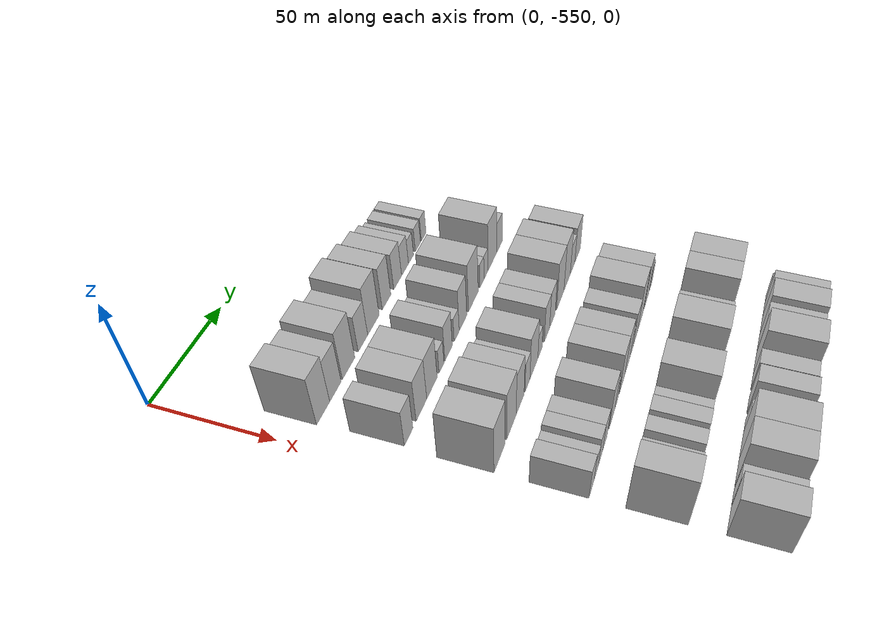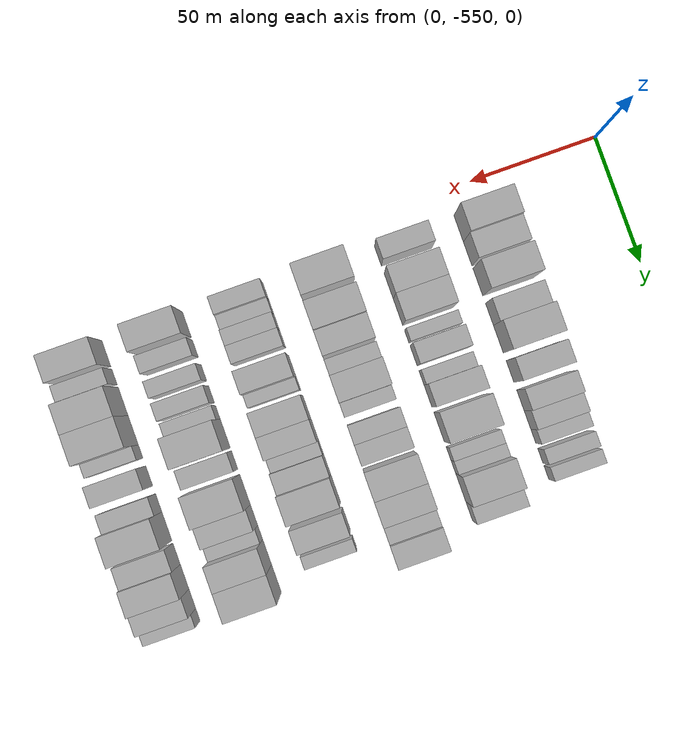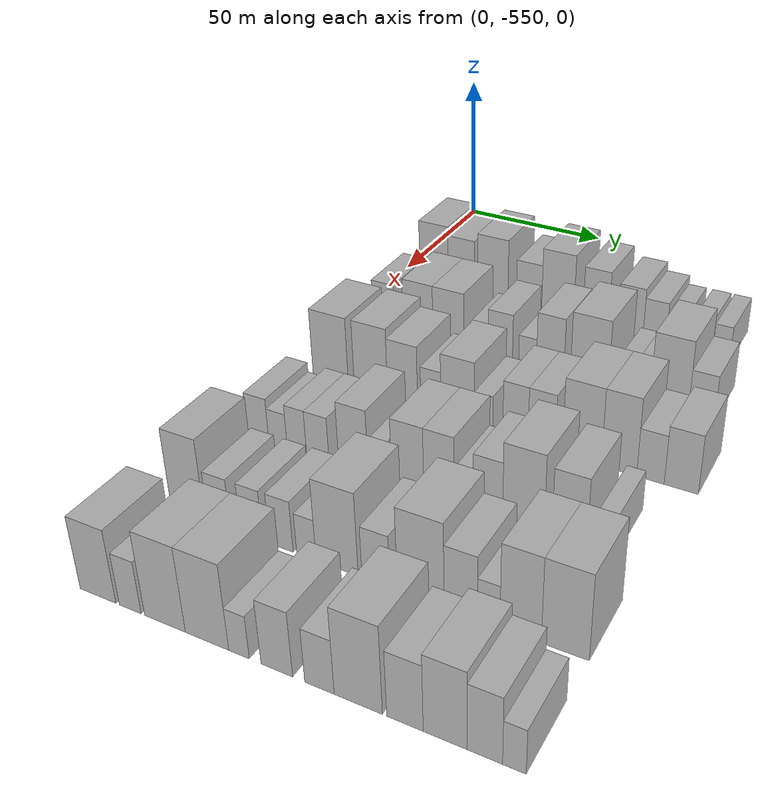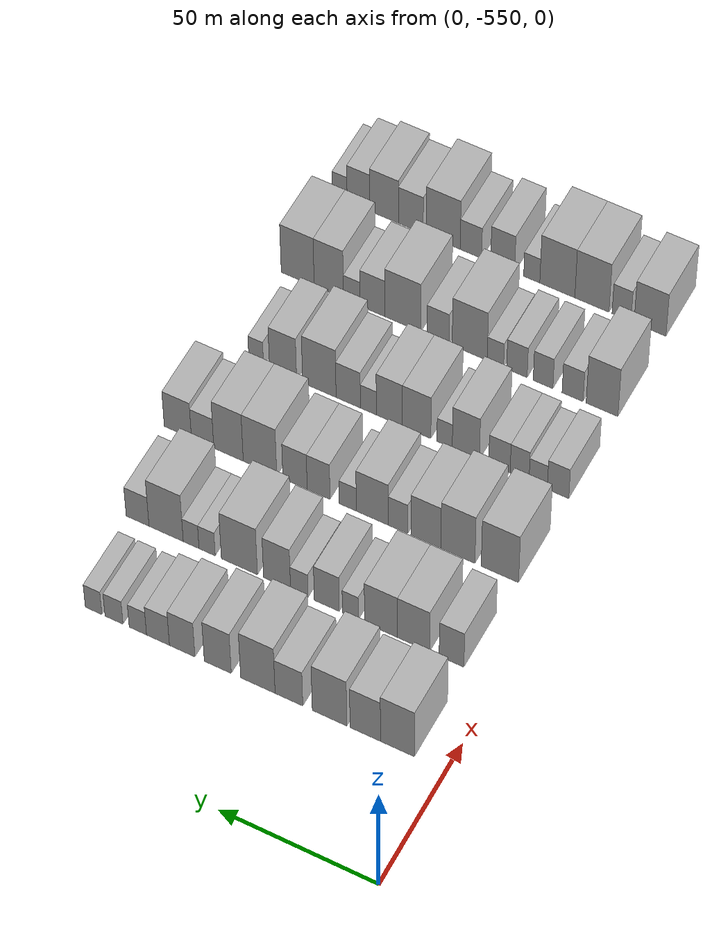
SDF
<sdf version="1.6">
 <world name="default">
  <model name="building_1">
   <static>1</static>
   <pose>50.0000 -534.6889 0 0.000000 0.000000 0.000000</pose>
   <link name="link">
    <pose>0 0 12.00 0 0 0</pose>
    <collision name="collision"><geometry><box><size>20.0000 10.6221 24.0000</size></box></geometry></collision>
    <visual name="visual">
     <cast_shadows>0</cast_shadows>
     <geometry><box><size>20.0000 10.6221 24.0000</size></box></geometry>
     <material>
      <script>
       <uri>model://HANNAS_wall/materials/scripts</uri>
       <uri>model://HANNAS_wall/materials/textures</uri>
       <name>vrc/HANNAS_wall</name>
      </script>
     </material>
    </visual>
   </link>
  </model>
  <model name="building_2">
   <static>1</static>
   <pose>50.0000 -524.6034 0 0.000000 0.000000 0.000000</pose>
   <link name="link">
    <pose>0 0 10.50 0 0 0</pose>
    <collision name="collision"><geometry><box><size>20.0000 9.5490 21.0000</size></box></geometry></collision>
    <visual name="visual">
     <cast_shadows>0</cast_shadows>
     <geometry><box><size>20.0000 9.5490 21.0000</size></box></geometry>
     <material>
      <script>
       <uri>model://HANNAS_wall/materials/scripts</uri>
       <uri>model://HANNAS_wall/materials/textures</uri>
       <name>vrc/HANNAS_wall</name>
      </script>
     </material>
    </visual>
   </link>
  </model>
  <model name="building_3">
   <static>1</static>
   <pose>50.0000 -513.3731 0 0.000000 0.000000 0.000000</pose>
   <link name="link">
    <pose>0 0 12.00 0 0 0</pose>
    <collision name="collision"><geometry><box><size>20.0000 10.9115 24.0000</size></box></geometry></collision>
    <visual name="visual">
     <cast_shadows>0</cast_shadows>
     <geometry><box><size>20.0000 10.9115 24.0000</size></box></geometry>
     <material>
      <script>
       <uri>model://HANNAS_wall/materials/scripts</uri>
       <uri>model://HANNAS_wall/materials/textures</uri>
       <name>vrc/HANNAS_wall</name>
      </script>
     </material>
    </visual>
   </link>
  </model>
  <model name="building_4">
   <static>1</static>
   <pose>50.0000 -500.5222 0 0.000000 0.000000 0.000000</pose>
   <link name="link">
    <pose>0 0 9.00 0 0 0</pose>
    <collision name="collision"><geometry><box><size>20.0000 8.7904 18.0000</size></box></geometry></collision>
    <visual name="visual">
     <cast_shadows>0</cast_shadows>
     <geometry><box><size>20.0000 8.7904 18.0000</size></box></geometry>
     <material>
      <script>
       <uri>model://HANNAS_wall/materials/scripts</uri>
       <uri>model://HANNAS_wall/materials/textures</uri>
       <name>vrc/HANNAS_wall</name>
      </script>
     </material>
    </visual>
   </link>
  </model>
  <model name="building_5">
   <static>1</static>
   <pose>50.0000 -490.6456 0 0.000000 0.000000 0.000000</pose>
   <link name="link">
    <pose>0 0 12.00 0 0 0</pose>
    <collision name="collision"><geometry><box><size>20.0000 10.9627 24.0000</size></box></geometry></collision>
    <visual name="visual">
     <cast_shadows>0</cast_shadows>
     <geometry><box><size>20.0000 10.9627 24.0000</size></box></geometry>
     <material>
      <script>
       <uri>model://HANNAS_wall/materials/scripts</uri>
       <uri>model://HANNAS_wall/materials/textures</uri>
       <name>vrc/HANNAS_wall</name>
      </script>
     </material>
    </visual>
   </link>
  </model>
  <model name="building_6">
   <static>1</static>
   <pose>50.0000 -477.8518 0 0.000000 0.000000 0.000000</pose>
   <link name="link">
    <pose>0 0 10.50 0 0 0</pose>
    <collision name="collision"><geometry><box><size>20.0000 8.6249 21.0000</size></box></geometry></collision>
    <visual name="visual">
     <cast_shadows>0</cast_shadows>
     <geometry><box><size>20.0000 8.6249 21.0000</size></box></geometry>
     <material>
      <script>
       <uri>model://HANNAS_wall/materials/scripts</uri>
       <uri>model://HANNAS_wall/materials/textures</uri>
       <name>vrc/HANNAS_wall</name>
      </script>
     </material>
    </visual>
   </link>
  </model>
  <model name="building_7">
   <static>1</static>
   <pose>50.0000 -466.4373 0 0.000000 0.000000 0.000000</pose>
   <link name="link">
    <pose>0 0 9.00 0 0 0</pose>
    <collision name="collision"><geometry><box><size>20.0000 8.2041 18.0000</size></box></geometry></collision>
    <visual name="visual">
     <cast_shadows>0</cast_shadows>
     <geometry><box><size>20.0000 8.2041 18.0000</size></box></geometry>
     <material>
      <script>
       <uri>model://HANNAS_wall/materials/scripts</uri>
       <uri>model://HANNAS_wall/materials/textures</uri>
       <name>vrc/HANNAS_wall</name>
      </script>
     </material>
    </visual>
   </link>
  </model>
  <model name="building_8">
   <static>1</static>
   <pose>50.0000 -458.6460 0 0.000000 0.000000 0.000000</pose>
   <link name="link">
    <pose>0 0 7.50 0 0 0</pose>
    <collision name="collision"><geometry><box><size>20.0000 7.3786 15.0000</size></box></geometry></collision>
    <visual name="visual">
     <cast_shadows>0</cast_shadows>
     <geometry><box><size>20.0000 7.3786 15.0000</size></box></geometry>
     <material>
      <script>
       <uri>model://HANNAS_wall/materials/scripts</uri>
       <uri>model://HANNAS_wall/materials/textures</uri>
       <name>vrc/HANNAS_wall</name>
      </script>
     </material>
    </visual>
   </link>
  </model>
  <model name="building_9">
   <static>1</static>
   <pose>50.0000 -452.1607 0 0.000000 0.000000 0.000000</pose>
   <link name="link">
    <pose>0 0 6.00 0 0 0</pose>
    <collision name="collision"><geometry><box><size>20.0000 5.5920 12.0000</size></box></geometry></collision>
    <visual name="visual">
     <cast_shadows>0</cast_shadows>
     <geometry><box><size>20.0000 5.5920 12.0000</size></box></geometry>
     <material>
      <script>
       <uri>model://HANNAS_wall/materials/scripts</uri>
       <uri>model://HANNAS_wall/materials/textures</uri>
       <name>vrc/HANNAS_wall</name>
      </script>
     </material>
    </visual>
   </link>
  </model>
  <model name="building_10">
   <static>1</static>
   <pose>50.0000 -444.4440 0 0.000000 0.000000 0.000000</pose>
   <link name="link">
    <pose>0 0 6.00 0 0 0</pose>
    <collision name="collision"><geometry><box><size>20.0000 5.8414 12.0000</size></box></geometry></collision>
    <visual name="visual">
     <cast_shadows>0</cast_shadows>
     <geometry><box><size>20.0000 5.8414 12.0000</size></box></geometry>
     <material>
      <script>
       <uri>model://HANNAS_wall/materials/scripts</uri>
       <uri>model://HANNAS_wall/materials/textures</uri>
       <name>vrc/HANNAS_wall</name>
      </script>
     </material>
    </visual>
   </link>
  </model>
  <model name="building_11">
   <static>1</static>
   <pose>50.0000 -437.8326 0 0.000000 0.000000 0.000000</pose>
   <link name="link">
    <pose>0 0 6.00 0 0 0</pose>
    <collision name="collision"><geometry><box><size>20.0000 5.3815 12.0000</size></box></geometry></collision>
    <visual name="visual">
     <cast_shadows>0</cast_shadows>
     <geometry><box><size>20.0000 5.3815 12.0000</size></box></geometry>
     <material>
      <script>
       <uri>model://HANNAS_wall/materials/scripts</uri>
       <uri>model://HANNAS_wall/materials/textures</uri>
       <name>vrc/HANNAS_wall</name>
      </script>
     </material>
    </visual>
   </link>
  </model>
  <model name="building_118">
   <static>1</static>
   <pose>82.0000 -535.0865 0 0.000000 0.000000 0.000000</pose>
   <link name="link">
    <pose>0 0 9.00 0 0 0</pose>
    <collision name="collision"><geometry><box><size>20.0000 7.8270 18.0000</size></box></geometry></collision>
    <visual name="visual">
     <cast_shadows>0</cast_shadows>
     <geometry><box><size>20.0000 7.8270 18.0000</size></box></geometry>
     <material>
      <script>
       <uri>model://HANNAS_wall/materials/scripts</uri>
       <uri>model://HANNAS_wall/materials/textures</uri>
       <name>vrc/HANNAS_wall</name>
      </script>
     </material>
    </visual>
   </link>
  </model>
  <model name="building_119">
   <static>1</static>
   <pose>82.0000 -523.0592 0 0.000000 0.000000 0.000000</pose>
   <link name="link">
    <pose>0 0 10.50 0 0 0</pose>
    <collision name="collision"><geometry><box><size>20.0000 10.2275 21.0000</size></box></geometry></collision>
    <visual name="visual">
     <cast_shadows>0</cast_shadows>
     <geometry><box><size>20.0000 10.2275 21.0000</size></box></geometry>
     <material>
      <script>
       <uri>model://HANNAS_wall/materials/scripts</uri>
       <uri>model://HANNAS_wall/materials/textures</uri>
       <name>vrc/HANNAS_wall</name>
      </script>
     </material>
    </visual>
   </link>
  </model>
  <model name="building_120">
   <static>1</static>
   <pose>82.0000 -512.7321 0 0.000000 0.000000 0.000000</pose>
   <link name="link">
    <pose>0 0 10.50 0 0 0</pose>
    <collision name="collision"><geometry><box><size>20.0000 10.4268 21.0000</size></box></geometry></collision>
    <visual name="visual">
     <cast_shadows>0</cast_shadows>
     <geometry><box><size>20.0000 10.4268 21.0000</size></box></geometry>
     <material>
      <script>
       <uri>model://HANNAS_wall/materials/scripts</uri>
       <uri>model://HANNAS_wall/materials/textures</uri>
       <name>vrc/HANNAS_wall</name>
      </script>
     </material>
    </visual>
   </link>
  </model>
  <model name="building_121">
   <static>1</static>
   <pose>82.0000 -502.9765 0 0.000000 0.000000 0.000000</pose>
   <link name="link">
    <pose>0 0 6.00 0 0 0</pose>
    <collision name="collision"><geometry><box><size>20.0000 5.0844 12.0000</size></box></geometry></collision>
    <visual name="visual">
     <cast_shadows>0</cast_shadows>
     <geometry><box><size>20.0000 5.0844 12.0000</size></box></geometry>
     <material>
      <script>
       <uri>model://HANNAS_wall/materials/scripts</uri>
       <uri>model://HANNAS_wall/materials/textures</uri>
       <name>vrc/HANNAS_wall</name>
      </script>
     </material>
    </visual>
   </link>
  </model>
  <model name="building_122">
   <static>1</static>
   <pose>82.0000 -495.4340 0 0.000000 0.000000 0.000000</pose>
   <link name="link">
    <pose>0 0 9.00 0 0 0</pose>
    <collision name="collision"><geometry><box><size>20.0000 8.0006 18.0000</size></box></geometry></collision>
    <visual name="visual">
     <cast_shadows>0</cast_shadows>
     <geometry><box><size>20.0000 8.0006 18.0000</size></box></geometry>
     <material>
      <script>
       <uri>model://HANNAS_wall/materials/scripts</uri>
       <uri>model://HANNAS_wall/materials/textures</uri>
       <name>vrc/HANNAS_wall</name>
      </script>
     </material>
    </visual>
   </link>
  </model>
  <model name="building_123">
   <static>1</static>
   <pose>82.0000 -486.6112 0 0.000000 0.000000 0.000000</pose>
   <link name="link">
    <pose>0 0 6.00 0 0 0</pose>
    <collision name="collision"><geometry><box><size>20.0000 5.6449 12.0000</size></box></geometry></collision>
    <visual name="visual">
     <cast_shadows>0</cast_shadows>
     <geometry><box><size>20.0000 5.6449 12.0000</size></box></geometry>
     <material>
      <script>
       <uri>model://HANNAS_wall/materials/scripts</uri>
       <uri>model://HANNAS_wall/materials/textures</uri>
       <name>vrc/HANNAS_wall</name>
      </script>
     </material>
    </visual>
   </link>
  </model>
  <model name="building_124">
   <static>1</static>
   <pose>82.0000 -479.4500 0 0.000000 0.000000 0.000000</pose>
   <link name="link">
    <pose>0 0 10.50 0 0 0</pose>
    <collision name="collision"><geometry><box><size>20.0000 8.6775 21.0000</size></box></geometry></collision>
    <visual name="visual">
     <cast_shadows>0</cast_shadows>
     <geometry><box><size>20.0000 8.6775 21.0000</size></box></geometry>
     <material>
      <script>
       <uri>model://HANNAS_wall/materials/scripts</uri>
       <uri>model://HANNAS_wall/materials/textures</uri>
       <name>vrc/HANNAS_wall</name>
      </script>
     </material>
    </visual>
   </link>
  </model>
  <model name="building_125">
   <static>1</static>
   <pose>82.0000 -467.2675 0 0.000000 0.000000 0.000000</pose>
   <link name="link">
    <pose>0 0 12.00 0 0 0</pose>
    <collision name="collision"><geometry><box><size>20.0000 11.6875 24.0000</size></box></geometry></collision>
    <visual name="visual">
     <cast_shadows>0</cast_shadows>
     <geometry><box><size>20.0000 11.6875 24.0000</size></box></geometry>
     <material>
      <script>
       <uri>model://HANNAS_wall/materials/scripts</uri>
       <uri>model://HANNAS_wall/materials/textures</uri>
       <name>vrc/HANNAS_wall</name>
      </script>
     </material>
    </visual>
   </link>
  </model>
  <model name="building_126">
   <static>1</static>
   <pose>82.0000 -456.7851 0 0.000000 0.000000 0.000000</pose>
   <link name="link">
    <pose>0 0 6.00 0 0 0</pose>
    <collision name="collision"><geometry><box><size>20.0000 5.2771 12.0000</size></box></geometry></collision>
    <visual name="visual">
     <cast_shadows>0</cast_shadows>
     <geometry><box><size>20.0000 5.2771 12.0000</size></box></geometry>
     <material>
      <script>
       <uri>model://HANNAS_wall/materials/scripts</uri>
       <uri>model://HANNAS_wall/materials/textures</uri>
       <name>vrc/HANNAS_wall</name>
      </script>
     </material>
    </visual>
   </link>
  </model>
  <model name="building_127">
   <static>1</static>
   <pose>82.0000 -451.5770 0 0.000000 0.000000 0.000000</pose>
   <link name="link">
    <pose>0 0 6.00 0 0 0</pose>
    <collision name="collision"><geometry><box><size>20.0000 5.1391 12.0000</size></box></geometry></collision>
    <visual name="visual">
     <cast_shadows>0</cast_shadows>
     <geometry><box><size>20.0000 5.1391 12.0000</size></box></geometry>
     <material>
      <script>
       <uri>model://HANNAS_wall/materials/scripts</uri>
       <uri>model://HANNAS_wall/materials/textures</uri>
       <name>vrc/HANNAS_wall</name>
      </script>
     </material>
    </visual>
   </link>
  </model>
  <model name="building_128">
   <static>1</static>
   <pose>82.0000 -443.4189 0 0.000000 0.000000 0.000000</pose>
   <link name="link">
    <pose>0 0 12.00 0 0 0</pose>
    <collision name="collision"><geometry><box><size>20.0000 11.1771 24.0000</size></box></geometry></collision>
    <visual name="visual">
     <cast_shadows>0</cast_shadows>
     <geometry><box><size>20.0000 11.1771 24.0000</size></box></geometry>
     <material>
      <script>
       <uri>model://HANNAS_wall/materials/scripts</uri>
       <uri>model://HANNAS_wall/materials/textures</uri>
       <name>vrc/HANNAS_wall</name>
      </script>
     </material>
    </visual>
   </link>
  </model>
  <model name="building_129">
   <static>1</static>
   <pose>82.0000 -434.0887 0 0.000000 0.000000 0.000000</pose>
   <link name="link">
    <pose>0 0 7.50 0 0 0</pose>
    <collision name="collision"><geometry><box><size>20.0000 7.4833 15.0000</size></box></geometry></collision>
    <visual name="visual">
     <cast_shadows>0</cast_shadows>
     <geometry><box><size>20.0000 7.4833 15.0000</size></box></geometry>
     <material>
      <script>
       <uri>model://HANNAS_wall/materials/scripts</uri>
       <uri>model://HANNAS_wall/materials/textures</uri>
       <name>vrc/HANNAS_wall</name>
      </script>
     </material>
    </visual>
   </link>
  </model>
  <model name="building_241">
   <static>1</static>
   <pose>114.0000 -534.0487 0 0.000000 0.000000 0.000000</pose>
   <link name="link">
    <pose>0 0 12.00 0 0 0</pose>
    <collision name="collision"><geometry><box><size>20.0000 11.9026 24.0000</size></box></geometry></collision>
    <visual name="visual">
     <cast_shadows>0</cast_shadows>
     <geometry><box><size>20.0000 11.9026 24.0000</size></box></geometry>
     <material>
      <script>
       <uri>model://HANNAS_wall/materials/scripts</uri>
       <uri>model://HANNAS_wall/materials/textures</uri>
       <name>vrc/HANNAS_wall</name>
      </script>
     </material>
    </visual>
   </link>
  </model>
  <model name="building_242">
   <static>1</static>
   <pose>114.0000 -520.6340 0 0.000000 0.000000 0.000000</pose>
   <link name="link">
    <pose>0 0 12.00 0 0 0</pose>
    <collision name="collision"><geometry><box><size>20.0000 10.9267 24.0000</size></box></geometry></collision>
    <visual name="visual">
     <cast_shadows>0</cast_shadows>
     <geometry><box><size>20.0000 10.9267 24.0000</size></box></geometry>
     <material>
      <script>
       <uri>model://HANNAS_wall/materials/scripts</uri>
       <uri>model://HANNAS_wall/materials/textures</uri>
       <name>vrc/HANNAS_wall</name>
      </script>
     </material>
    </visual>
   </link>
  </model>
  <model name="building_243">
   <static>1</static>
   <pose>114.0000 -510.3578 0 0.000000 0.000000 0.000000</pose>
   <link name="link">
    <pose>0 0 10.50 0 0 0</pose>
    <collision name="collision"><geometry><box><size>20.0000 9.6258 21.0000</size></box></geometry></collision>
    <visual name="visual">
     <cast_shadows>0</cast_shadows>
     <geometry><box><size>20.0000 9.6258 21.0000</size></box></geometry>
     <material>
      <script>
       <uri>model://HANNAS_wall/materials/scripts</uri>
       <uri>model://HANNAS_wall/materials/textures</uri>
       <name>vrc/HANNAS_wall</name>
      </script>
     </material>
    </visual>
   </link>
  </model>
  <model name="building_244">
   <static>1</static>
   <pose>114.0000 -501.4123 0 0.000000 0.000000 0.000000</pose>
   <link name="link">
    <pose>0 0 7.50 0 0 0</pose>
    <collision name="collision"><geometry><box><size>20.0000 6.2652 15.0000</size></box></geometry></collision>
    <visual name="visual">
     <cast_shadows>0</cast_shadows>
     <geometry><box><size>20.0000 6.2652 15.0000</size></box></geometry>
     <material>
      <script>
       <uri>model://HANNAS_wall/materials/scripts</uri>
       <uri>model://HANNAS_wall/materials/textures</uri>
       <name>vrc/HANNAS_wall</name>
      </script>
     </material>
    </visual>
   </link>
  </model>
  <model name="building_245">
   <static>1</static>
   <pose>114.0000 -493.1168 0 0.000000 0.000000 0.000000</pose>
   <link name="link">
    <pose>0 0 10.50 0 0 0</pose>
    <collision name="collision"><geometry><box><size>20.0000 10.3258 21.0000</size></box></geometry></collision>
    <visual name="visual">
     <cast_shadows>0</cast_shadows>
     <geometry><box><size>20.0000 10.3258 21.0000</size></box></geometry>
     <material>
      <script>
       <uri>model://HANNAS_wall/materials/scripts</uri>
       <uri>model://HANNAS_wall/materials/textures</uri>
       <name>vrc/HANNAS_wall</name>
      </script>
     </material>
    </visual>
   </link>
  </model>
  <model name="building_246">
   <static>1</static>
   <pose>114.0000 -485.1884 0 0.000000 0.000000 0.000000</pose>
   <link name="link">
    <pose>0 0 6.00 0 0 0</pose>
    <collision name="collision"><geometry><box><size>20.0000 5.5309 12.0000</size></box></geometry></collision>
    <visual name="visual">
     <cast_shadows>0</cast_shadows>
     <geometry><box><size>20.0000 5.5309 12.0000</size></box></geometry>
     <material>
      <script>
       <uri>model://HANNAS_wall/materials/scripts</uri>
       <uri>model://HANNAS_wall/materials/textures</uri>
       <name>vrc/HANNAS_wall</name>
      </script>
     </material>
    </visual>
   </link>
  </model>
  <model name="building_247">
   <static>1</static>
   <pose>114.0000 -475.7022 0 0.000000 0.000000 0.000000</pose>
   <link name="link">
    <pose>0 0 9.00 0 0 0</pose>
    <collision name="collision"><geometry><box><size>20.0000 7.4415 18.0000</size></box></geometry></collision>
    <visual name="visual">
     <cast_shadows>0</cast_shadows>
     <geometry><box><size>20.0000 7.4415 18.0000</size></box></geometry>
     <material>
      <script>
       <uri>model://HANNAS_wall/materials/scripts</uri>
       <uri>model://HANNAS_wall/materials/textures</uri>
       <name>vrc/HANNAS_wall</name>
      </script>
     </material>
    </visual>
   </link>
  </model>
  <model name="building_248">
   <static>1</static>
   <pose>114.0000 -468.0143 0 0.000000 0.000000 0.000000</pose>
   <link name="link">
    <pose>0 0 9.00 0 0 0</pose>
    <collision name="collision"><geometry><box><size>20.0000 7.9343 18.0000</size></box></geometry></collision>
    <visual name="visual">
     <cast_shadows>0</cast_shadows>
     <geometry><box><size>20.0000 7.9343 18.0000</size></box></geometry>
     <material>
      <script>
       <uri>model://HANNAS_wall/materials/scripts</uri>
       <uri>model://HANNAS_wall/materials/textures</uri>
       <name>vrc/HANNAS_wall</name>
      </script>
     </material>
    </visual>
   </link>
  </model>
  <model name="building_249">
   <static>1</static>
   <pose>114.0000 -456.5509 0 0.000000 0.000000 0.000000</pose>
   <link name="link">
    <pose>0 0 12.00 0 0 0</pose>
    <collision name="collision"><geometry><box><size>20.0000 10.9925 24.0000</size></box></geometry></collision>
    <visual name="visual">
     <cast_shadows>0</cast_shadows>
     <geometry><box><size>20.0000 10.9925 24.0000</size></box></geometry>
     <material>
      <script>
       <uri>model://HANNAS_wall/materials/scripts</uri>
       <uri>model://HANNAS_wall/materials/textures</uri>
       <name>vrc/HANNAS_wall</name>
      </script>
     </material>
    </visual>
   </link>
  </model>
  <model name="building_250">
   <static>1</static>
   <pose>114.0000 -446.1976 0 0.000000 0.000000 0.000000</pose>
   <link name="link">
    <pose>0 0 12.00 0 0 0</pose>
    <collision name="collision"><geometry><box><size>20.0000 9.7141 24.0000</size></box></geometry></collision>
    <visual name="visual">
     <cast_shadows>0</cast_shadows>
     <geometry><box><size>20.0000 9.7141 24.0000</size></box></geometry>
     <material>
      <script>
       <uri>model://HANNAS_wall/materials/scripts</uri>
       <uri>model://HANNAS_wall/materials/textures</uri>
       <name>vrc/HANNAS_wall</name>
      </script>
     </material>
    </visual>
   </link>
  </model>
  <model name="building_251">
   <static>1</static>
   <pose>114.0000 -437.6485 0 0.000000 0.000000 0.000000</pose>
   <link name="link">
    <pose>0 0 7.50 0 0 0</pose>
    <collision name="collision"><geometry><box><size>20.0000 7.3843 15.0000</size></box></geometry></collision>
    <visual name="visual">
     <cast_shadows>0</cast_shadows>
     <geometry><box><size>20.0000 7.3843 15.0000</size></box></geometry>
     <material>
      <script>
       <uri>model://HANNAS_wall/materials/scripts</uri>
       <uri>model://HANNAS_wall/materials/textures</uri>
       <name>vrc/HANNAS_wall</name>
      </script>
     </material>
    </visual>
   </link>
  </model>
  <model name="building_252">
   <static>1</static>
   <pose>114.0000 -429.4643 0 0.000000 0.000000 0.000000</pose>
   <link name="link">
    <pose>0 0 9.00 0 0 0</pose>
    <collision name="collision"><geometry><box><size>20.0000 8.9841 18.0000</size></box></geometry></collision>
    <visual name="visual">
     <cast_shadows>0</cast_shadows>
     <geometry><box><size>20.0000 8.9841 18.0000</size></box></geometry>
     <material>
      <script>
       <uri>model://HANNAS_wall/materials/scripts</uri>
       <uri>model://HANNAS_wall/materials/textures</uri>
       <name>vrc/HANNAS_wall</name>
      </script>
     </material>
    </visual>
   </link>
  </model>
  <model name="building_365">
   <static>1</static>
   <pose>146.0000 -536.5437 0 0.000000 0.000000 0.000000</pose>
   <link name="link">
    <pose>0 0 7.50 0 0 0</pose>
    <collision name="collision"><geometry><box><size>20.0000 6.9125 15.0000</size></box></geometry></collision>
    <visual name="visual">
     <cast_shadows>0</cast_shadows>
     <geometry><box><size>20.0000 6.9125 15.0000</size></box></geometry>
     <material>
      <script>
       <uri>model://HANNAS_wall/materials/scripts</uri>
       <uri>model://HANNAS_wall/materials/textures</uri>
       <name>vrc/HANNAS_wall</name>
      </script>
     </material>
    </visual>
   </link>
  </model>
  <model name="building_366">
   <static>1</static>
   <pose>146.0000 -530.1552 0 0.000000 0.000000 0.000000</pose>
   <link name="link">
    <pose>0 0 6.00 0 0 0</pose>
    <collision name="collision"><geometry><box><size>20.0000 5.8645 12.0000</size></box></geometry></collision>
    <visual name="visual">
     <cast_shadows>0</cast_shadows>
     <geometry><box><size>20.0000 5.8645 12.0000</size></box></geometry>
     <material>
      <script>
       <uri>model://HANNAS_wall/materials/scripts</uri>
       <uri>model://HANNAS_wall/materials/textures</uri>
       <name>vrc/HANNAS_wall</name>
      </script>
     </material>
    </visual>
   </link>
  </model>
  <model name="building_367">
   <static>1</static>
   <pose>146.0000 -524.1731 0 0.000000 0.000000 0.000000</pose>
   <link name="link">
    <pose>0 0 7.50 0 0 0</pose>
    <collision name="collision"><geometry><box><size>20.0000 6.0998 15.0000</size></box></geometry></collision>
    <visual name="visual">
     <cast_shadows>0</cast_shadows>
     <geometry><box><size>20.0000 6.0998 15.0000</size></box></geometry>
     <material>
      <script>
       <uri>model://HANNAS_wall/materials/scripts</uri>
       <uri>model://HANNAS_wall/materials/textures</uri>
       <name>vrc/HANNAS_wall</name>
      </script>
     </material>
    </visual>
   </link>
  </model>
  <model name="building_368">
   <static>1</static>
   <pose>146.0000 -517.6548 0 0.000000 0.000000 0.000000</pose>
   <link name="link">
    <pose>0 0 7.50 0 0 0</pose>
    <collision name="collision"><geometry><box><size>20.0000 6.9368 15.0000</size></box></geometry></collision>
    <visual name="visual">
     <cast_shadows>0</cast_shadows>
     <geometry><box><size>20.0000 6.9368 15.0000</size></box></geometry>
     <material>
      <script>
       <uri>model://HANNAS_wall/materials/scripts</uri>
       <uri>model://HANNAS_wall/materials/textures</uri>
       <name>vrc/HANNAS_wall</name>
      </script>
     </material>
    </visual>
   </link>
  </model>
  <model name="building_369">
   <static>1</static>
   <pose>146.0000 -506.7854 0 0.000000 0.000000 0.000000</pose>
   <link name="link">
    <pose>0 0 10.50 0 0 0</pose>
    <collision name="collision"><geometry><box><size>20.0000 8.8020 21.0000</size></box></geometry></collision>
    <visual name="visual">
     <cast_shadows>0</cast_shadows>
     <geometry><box><size>20.0000 8.8020 21.0000</size></box></geometry>
     <material>
      <script>
       <uri>model://HANNAS_wall/materials/scripts</uri>
       <uri>model://HANNAS_wall/materials/textures</uri>
       <name>vrc/HANNAS_wall</name>
      </script>
     </material>
    </visual>
   </link>
  </model>
  <model name="building_370">
   <static>1</static>
   <pose>146.0000 -499.8934 0 0.000000 0.000000 0.000000</pose>
   <link name="link">
    <pose>0 0 6.00 0 0 0</pose>
    <collision name="collision"><geometry><box><size>20.0000 4.9819 12.0000</size></box></geometry></collision>
    <visual name="visual">
     <cast_shadows>0</cast_shadows>
     <geometry><box><size>20.0000 4.9819 12.0000</size></box></geometry>
     <material>
      <script>
       <uri>model://HANNAS_wall/materials/scripts</uri>
       <uri>model://HANNAS_wall/materials/textures</uri>
       <name>vrc/HANNAS_wall</name>
      </script>
     </material>
    </visual>
   </link>
  </model>
  <model name="building_371">
   <static>1</static>
   <pose>146.0000 -490.7685 0 0.000000 0.000000 0.000000</pose>
   <link name="link">
    <pose>0 0 10.50 0 0 0</pose>
    <collision name="collision"><geometry><box><size>20.0000 9.2679 21.0000</size></box></geometry></collision>
    <visual name="visual">
     <cast_shadows>0</cast_shadows>
     <geometry><box><size>20.0000 9.2679 21.0000</size></box></geometry>
     <material>
      <script>
       <uri>model://HANNAS_wall/materials/scripts</uri>
       <uri>model://HANNAS_wall/materials/textures</uri>
       <name>vrc/HANNAS_wall</name>
      </script>
     </material>
    </visual>
   </link>
  </model>
  <model name="building_372">
   <static>1</static>
   <pose>146.0000 -481.8613 0 0.000000 0.000000 0.000000</pose>
   <link name="link">
    <pose>0 0 10.50 0 0 0</pose>
    <collision name="collision"><geometry><box><size>20.0000 8.5464 21.0000</size></box></geometry></collision>
    <visual name="visual">
     <cast_shadows>0</cast_shadows>
     <geometry><box><size>20.0000 8.5464 21.0000</size></box></geometry>
     <material>
      <script>
       <uri>model://HANNAS_wall/materials/scripts</uri>
       <uri>model://HANNAS_wall/materials/textures</uri>
       <name>vrc/HANNAS_wall</name>
      </script>
     </material>
    </visual>
   </link>
  </model>
  <model name="building_373">
   <static>1</static>
   <pose>146.0000 -474.9772 0 0.000000 0.000000 0.000000</pose>
   <link name="link">
    <pose>0 0 6.00 0 0 0</pose>
    <collision name="collision"><geometry><box><size>20.0000 5.2218 12.0000</size></box></geometry></collision>
    <visual name="visual">
     <cast_shadows>0</cast_shadows>
     <geometry><box><size>20.0000 5.2218 12.0000</size></box></geometry>
     <material>
      <script>
       <uri>model://HANNAS_wall/materials/scripts</uri>
       <uri>model://HANNAS_wall/materials/textures</uri>
       <name>vrc/HANNAS_wall</name>
      </script>
     </material>
    </visual>
   </link>
  </model>
  <model name="building_374">
   <static>1</static>
   <pose>146.0000 -468.3637 0 0.000000 0.000000 0.000000</pose>
   <link name="link">
    <pose>0 0 9.00 0 0 0</pose>
    <collision name="collision"><geometry><box><size>20.0000 8.0053 18.0000</size></box></geometry></collision>
    <visual name="visual">
     <cast_shadows>0</cast_shadows>
     <geometry><box><size>20.0000 8.0053 18.0000</size></box></geometry>
     <material>
      <script>
       <uri>model://HANNAS_wall/materials/scripts</uri>
       <uri>model://HANNAS_wall/materials/textures</uri>
       <name>vrc/HANNAS_wall</name>
      </script>
     </material>
    </visual>
   </link>
  </model>
  <model name="building_375">
   <static>1</static>
   <pose>146.0000 -458.8416 0 0.000000 0.000000 0.000000</pose>
   <link name="link">
    <pose>0 0 12.00 0 0 0</pose>
    <collision name="collision"><geometry><box><size>20.0000 11.0388 24.0000</size></box></geometry></collision>
    <visual name="visual">
     <cast_shadows>0</cast_shadows>
     <geometry><box><size>20.0000 11.0388 24.0000</size></box></geometry>
     <material>
      <script>
       <uri>model://HANNAS_wall/materials/scripts</uri>
       <uri>model://HANNAS_wall/materials/textures</uri>
       <name>vrc/HANNAS_wall</name>
      </script>
     </material>
    </visual>
   </link>
  </model>
  <model name="building_376">
   <static>1</static>
   <pose>146.0000 -446.8249 0 0.000000 0.000000 0.000000</pose>
   <link name="link">
    <pose>0 0 10.50 0 0 0</pose>
    <collision name="collision"><geometry><box><size>20.0000 8.9946 21.0000</size></box></geometry></collision>
    <visual name="visual">
     <cast_shadows>0</cast_shadows>
     <geometry><box><size>20.0000 8.9946 21.0000</size></box></geometry>
     <material>
      <script>
       <uri>model://HANNAS_wall/materials/scripts</uri>
       <uri>model://HANNAS_wall/materials/textures</uri>
       <name>vrc/HANNAS_wall</name>
      </script>
     </material>
    </visual>
   </link>
  </model>
  <model name="building_377">
   <static>1</static>
   <pose>146.0000 -437.8929 0 0.000000 0.000000 0.000000</pose>
   <link name="link">
    <pose>0 0 6.00 0 0 0</pose>
    <collision name="collision"><geometry><box><size>20.0000 4.8694 12.0000</size></box></geometry></collision>
    <visual name="visual">
     <cast_shadows>0</cast_shadows>
     <geometry><box><size>20.0000 4.8694 12.0000</size></box></geometry>
     <material>
      <script>
       <uri>model://HANNAS_wall/materials/scripts</uri>
       <uri>model://HANNAS_wall/materials/textures</uri>
       <name>vrc/HANNAS_wall</name>
      </script>
     </material>
    </visual>
   </link>
  </model>
  <model name="building_482">
   <static>1</static>
   <pose>178.0000 -534.8579 0 0.000000 0.000000 0.000000</pose>
   <link name="link">
    <pose>0 0 12.00 0 0 0</pose>
    <collision name="collision"><geometry><box><size>20.0000 10.2842 24.0000</size></box></geometry></collision>
    <visual name="visual">
     <cast_shadows>0</cast_shadows>
     <geometry><box><size>20.0000 10.2842 24.0000</size></box></geometry>
     <material>
      <script>
       <uri>model://HANNAS_wall/materials/scripts</uri>
       <uri>model://HANNAS_wall/materials/textures</uri>
       <name>vrc/HANNAS_wall</name>
      </script>
     </material>
    </visual>
   </link>
  </model>
  <model name="building_483">
   <static>1</static>
   <pose>178.0000 -525.3049 0 0.000000 0.000000 0.000000</pose>
   <link name="link">
    <pose>0 0 7.50 0 0 0</pose>
    <collision name="collision"><geometry><box><size>20.0000 6.8216 15.0000</size></box></geometry></collision>
    <visual name="visual">
     <cast_shadows>0</cast_shadows>
     <geometry><box><size>20.0000 6.8216 15.0000</size></box></geometry>
     <material>
      <script>
       <uri>model://HANNAS_wall/materials/scripts</uri>
       <uri>model://HANNAS_wall/materials/textures</uri>
       <name>vrc/HANNAS_wall</name>
      </script>
     </material>
    </visual>
   </link>
  </model>
  <model name="building_484">
   <static>1</static>
   <pose>178.0000 -515.6932 0 0.000000 0.000000 0.000000</pose>
   <link name="link">
    <pose>0 0 7.50 0 0 0</pose>
    <collision name="collision"><geometry><box><size>20.0000 6.4018 15.0000</size></box></geometry></collision>
    <visual name="visual">
     <cast_shadows>0</cast_shadows>
     <geometry><box><size>20.0000 6.4018 15.0000</size></box></geometry>
     <material>
      <script>
       <uri>model://HANNAS_wall/materials/scripts</uri>
       <uri>model://HANNAS_wall/materials/textures</uri>
       <name>vrc/HANNAS_wall</name>
      </script>
     </material>
    </visual>
   </link>
  </model>
  <model name="building_485">
   <static>1</static>
   <pose>178.0000 -507.1367 0 0.000000 0.000000 0.000000</pose>
   <link name="link">
    <pose>0 0 7.50 0 0 0</pose>
    <collision name="collision"><geometry><box><size>20.0000 6.7112 15.0000</size></box></geometry></collision>
    <visual name="visual">
     <cast_shadows>0</cast_shadows>
     <geometry><box><size>20.0000 6.7112 15.0000</size></box></geometry>
     <material>
      <script>
       <uri>model://HANNAS_wall/materials/scripts</uri>
       <uri>model://HANNAS_wall/materials/textures</uri>
       <name>vrc/HANNAS_wall</name>
      </script>
     </material>
    </visual>
   </link>
  </model>
  <model name="building_486">
   <static>1</static>
   <pose>178.0000 -500.0825 0 0.000000 0.000000 0.000000</pose>
   <link name="link">
    <pose>0 0 6.00 0 0 0</pose>
    <collision name="collision"><geometry><box><size>20.0000 5.3972 12.0000</size></box></geometry></collision>
    <visual name="visual">
     <cast_shadows>0</cast_shadows>
     <geometry><box><size>20.0000 5.3972 12.0000</size></box></geometry>
     <material>
      <script>
       <uri>model://HANNAS_wall/materials/scripts</uri>
       <uri>model://HANNAS_wall/materials/textures</uri>
       <name>vrc/HANNAS_wall</name>
      </script>
     </material>
    </visual>
   </link>
  </model>
  <model name="building_487">
   <static>1</static>
   <pose>178.0000 -491.6267 0 0.000000 0.000000 0.000000</pose>
   <link name="link">
    <pose>0 0 12.00 0 0 0</pose>
    <collision name="collision"><geometry><box><size>20.0000 11.5144 24.0000</size></box></geometry></collision>
    <visual name="visual">
     <cast_shadows>0</cast_shadows>
     <geometry><box><size>20.0000 11.5144 24.0000</size></box></geometry>
     <material>
      <script>
       <uri>model://HANNAS_wall/materials/scripts</uri>
       <uri>model://HANNAS_wall/materials/textures</uri>
       <name>vrc/HANNAS_wall</name>
      </script>
     </material>
    </visual>
   </link>
  </model>
  <model name="building_488">
   <static>1</static>
   <pose>178.0000 -481.1965 0 0.000000 0.000000 0.000000</pose>
   <link name="link">
    <pose>0 0 7.50 0 0 0</pose>
    <collision name="collision"><geometry><box><size>20.0000 7.3461 15.0000</size></box></geometry></collision>
    <visual name="visual">
     <cast_shadows>0</cast_shadows>
     <geometry><box><size>20.0000 7.3461 15.0000</size></box></geometry>
     <material>
      <script>
       <uri>model://HANNAS_wall/materials/scripts</uri>
       <uri>model://HANNAS_wall/materials/textures</uri>
       <name>vrc/HANNAS_wall</name>
      </script>
     </material>
    </visual>
   </link>
  </model>
  <model name="building_489">
   <static>1</static>
   <pose>178.0000 -469.5345 0 0.000000 0.000000 0.000000</pose>
   <link name="link">
    <pose>0 0 12.00 0 0 0</pose>
    <collision name="collision"><geometry><box><size>20.0000 11.9779 24.0000</size></box></geometry></collision>
    <visual name="visual">
     <cast_shadows>0</cast_shadows>
     <geometry><box><size>20.0000 11.9779 24.0000</size></box></geometry>
     <material>
      <script>
       <uri>model://HANNAS_wall/materials/scripts</uri>
       <uri>model://HANNAS_wall/materials/textures</uri>
       <name>vrc/HANNAS_wall</name>
      </script>
     </material>
    </visual>
   </link>
  </model>
  <model name="building_490">
   <static>1</static>
   <pose>178.0000 -459.4265 0 0.000000 0.000000 0.000000</pose>
   <link name="link">
    <pose>0 0 9.00 0 0 0</pose>
    <collision name="collision"><geometry><box><size>20.0000 8.2381 18.0000</size></box></geometry></collision>
    <visual name="visual">
     <cast_shadows>0</cast_shadows>
     <geometry><box><size>20.0000 8.2381 18.0000</size></box></geometry>
     <material>
      <script>
       <uri>model://HANNAS_wall/materials/scripts</uri>
       <uri>model://HANNAS_wall/materials/textures</uri>
       <name>vrc/HANNAS_wall</name>
      </script>
     </material>
    </visual>
   </link>
  </model>
  <model name="building_491">
   <static>1</static>
   <pose>178.0000 -452.5621 0 0.000000 0.000000 0.000000</pose>
   <link name="link">
    <pose>0 0 6.00 0 0 0</pose>
    <collision name="collision"><geometry><box><size>20.0000 5.4905 12.0000</size></box></geometry></collision>
    <visual name="visual">
     <cast_shadows>0</cast_shadows>
     <geometry><box><size>20.0000 5.4905 12.0000</size></box></geometry>
     <material>
      <script>
       <uri>model://HANNAS_wall/materials/scripts</uri>
       <uri>model://HANNAS_wall/materials/textures</uri>
       <name>vrc/HANNAS_wall</name>
      </script>
     </material>
    </visual>
   </link>
  </model>
  <model name="building_492">
   <static>1</static>
   <pose>178.0000 -444.9083 0 0.000000 0.000000 0.000000</pose>
   <link name="link">
    <pose>0 0 12.00 0 0 0</pose>
    <collision name="collision"><geometry><box><size>20.0000 9.8172 24.0000</size></box></geometry></collision>
    <visual name="visual">
     <cast_shadows>0</cast_shadows>
     <geometry><box><size>20.0000 9.8172 24.0000</size></box></geometry>
     <material>
      <script>
       <uri>model://HANNAS_wall/materials/scripts</uri>
       <uri>model://HANNAS_wall/materials/textures</uri>
       <name>vrc/HANNAS_wall</name>
      </script>
     </material>
    </visual>
   </link>
  </model>
  <model name="building_493">
   <static>1</static>
   <pose>178.0000 -434.4690 0 0.000000 0.000000 0.000000</pose>
   <link name="link">
    <pose>0 0 12.00 0 0 0</pose>
    <collision name="collision"><geometry><box><size>20.0000 11.0612 24.0000</size></box></geometry></collision>
    <visual name="visual">
     <cast_shadows>0</cast_shadows>
     <geometry><box><size>20.0000 11.0612 24.0000</size></box></geometry>
     <material>
      <script>
       <uri>model://HANNAS_wall/materials/scripts</uri>
       <uri>model://HANNAS_wall/materials/textures</uri>
       <name>vrc/HANNAS_wall</name>
      </script>
     </material>
    </visual>
   </link>
  </model>
  <model name="building_603">
   <static>1</static>
   <pose>210.0000 -534.7938 0 0.000000 0.000000 0.000000</pose>
   <link name="link">
    <pose>0 0 10.50 0 0 0</pose>
    <collision name="collision"><geometry><box><size>20.0000 10.4124 21.0000</size></box></geometry></collision>
    <visual name="visual">
     <cast_shadows>0</cast_shadows>
     <geometry><box><size>20.0000 10.4124 21.0000</size></box></geometry>
     <material>
      <script>
       <uri>model://HANNAS_wall/materials/scripts</uri>
       <uri>model://HANNAS_wall/materials/textures</uri>
       <name>vrc/HANNAS_wall</name>
      </script>
     </material>
    </visual>
   </link>
  </model>
  <model name="building_604">
   <static>1</static>
   <pose>210.0000 -525.4861 0 0.000000 0.000000 0.000000</pose>
   <link name="link">
    <pose>0 0 7.50 0 0 0</pose>
    <collision name="collision"><geometry><box><size>20.0000 6.2028 15.0000</size></box></geometry></collision>
    <visual name="visual">
     <cast_shadows>0</cast_shadows>
     <geometry><box><size>20.0000 6.2028 15.0000</size></box></geometry>
     <material>
      <script>
       <uri>model://HANNAS_wall/materials/scripts</uri>
       <uri>model://HANNAS_wall/materials/textures</uri>
       <name>vrc/HANNAS_wall</name>
      </script>
     </material>
    </visual>
   </link>
  </model>
  <model name="building_605">
   <static>1</static>
   <pose>210.0000 -515.7674 0 0.000000 0.000000 0.000000</pose>
   <link name="link">
    <pose>0 0 12.00 0 0 0</pose>
    <collision name="collision"><geometry><box><size>20.0000 11.2347 24.0000</size></box></geometry></collision>
    <visual name="visual">
     <cast_shadows>0</cast_shadows>
     <geometry><box><size>20.0000 11.2347 24.0000</size></box></geometry>
     <material>
      <script>
       <uri>model://HANNAS_wall/materials/scripts</uri>
       <uri>model://HANNAS_wall/materials/textures</uri>
       <name>vrc/HANNAS_wall</name>
      </script>
     </material>
    </visual>
   </link>
  </model>
  <model name="building_606">
   <static>1</static>
   <pose>210.0000 -504.3601 0 0.000000 0.000000 0.000000</pose>
   <link name="link">
    <pose>0 0 12.00 0 0 0</pose>
    <collision name="collision"><geometry><box><size>20.0000 11.5799 24.0000</size></box></geometry></collision>
    <visual name="visual">
     <cast_shadows>0</cast_shadows>
     <geometry><box><size>20.0000 11.5799 24.0000</size></box></geometry>
     <material>
      <script>
       <uri>model://HANNAS_wall/materials/scripts</uri>
       <uri>model://HANNAS_wall/materials/textures</uri>
       <name>vrc/HANNAS_wall</name>
      </script>
     </material>
    </visual>
   </link>
  </model>
  <model name="building_607">
   <static>1</static>
   <pose>210.0000 -495.9040 0 0.000000 0.000000 0.000000</pose>
   <link name="link">
    <pose>0 0 6.00 0 0 0</pose>
    <collision name="collision"><geometry><box><size>20.0000 5.3323 12.0000</size></box></geometry></collision>
    <visual name="visual">
     <cast_shadows>0</cast_shadows>
     <geometry><box><size>20.0000 5.3323 12.0000</size></box></geometry>
     <material>
      <script>
       <uri>model://HANNAS_wall/materials/scripts</uri>
       <uri>model://HANNAS_wall/materials/textures</uri>
       <name>vrc/HANNAS_wall</name>
      </script>
     </material>
    </visual>
   </link>
  </model>
  <model name="building_608">
   <static>1</static>
   <pose>210.0000 -486.2498 0 0.000000 0.000000 0.000000</pose>
   <link name="link">
    <pose>0 0 9.00 0 0 0</pose>
    <collision name="collision"><geometry><box><size>20.0000 7.9760 18.0000</size></box></geometry></collision>
    <visual name="visual">
     <cast_shadows>0</cast_shadows>
     <geometry><box><size>20.0000 7.9760 18.0000</size></box></geometry>
     <material>
      <script>
       <uri>model://HANNAS_wall/materials/scripts</uri>
       <uri>model://HANNAS_wall/materials/textures</uri>
       <name>vrc/HANNAS_wall</name>
      </script>
     </material>
    </visual>
   </link>
  </model>
  <model name="building_609">
   <static>1</static>
   <pose>210.0000 -475.6755 0 0.000000 0.000000 0.000000</pose>
   <link name="link">
    <pose>0 0 7.50 0 0 0</pose>
    <collision name="collision"><geometry><box><size>20.0000 7.1726 15.0000</size></box></geometry></collision>
    <visual name="visual">
     <cast_shadows>0</cast_shadows>
     <geometry><box><size>20.0000 7.1726 15.0000</size></box></geometry>
     <material>
      <script>
       <uri>model://HANNAS_wall/materials/scripts</uri>
       <uri>model://HANNAS_wall/materials/textures</uri>
       <name>vrc/HANNAS_wall</name>
      </script>
     </material>
    </visual>
   </link>
  </model>
  <model name="building_610">
   <static>1</static>
   <pose>210.0000 -466.3906 0 0.000000 0.000000 0.000000</pose>
   <link name="link">
    <pose>0 0 12.00 0 0 0</pose>
    <collision name="collision"><geometry><box><size>20.0000 11.3972 24.0000</size></box></geometry></collision>
    <visual name="visual">
     <cast_shadows>0</cast_shadows>
     <geometry><box><size>20.0000 11.3972 24.0000</size></box></geometry>
     <material>
      <script>
       <uri>model://HANNAS_wall/materials/scripts</uri>
       <uri>model://HANNAS_wall/materials/textures</uri>
       <name>vrc/HANNAS_wall</name>
      </script>
     </material>
    </visual>
   </link>
  </model>
  <model name="building_611">
   <static>1</static>
   <pose>210.0000 -455.5244 0 0.000000 0.000000 0.000000</pose>
   <link name="link">
    <pose>0 0 9.00 0 0 0</pose>
    <collision name="collision"><geometry><box><size>20.0000 8.3353 18.0000</size></box></geometry></collision>
    <visual name="visual">
     <cast_shadows>0</cast_shadows>
     <geometry><box><size>20.0000 8.3353 18.0000</size></box></geometry>
     <material>
      <script>
       <uri>model://HANNAS_wall/materials/scripts</uri>
       <uri>model://HANNAS_wall/materials/textures</uri>
       <name>vrc/HANNAS_wall</name>
      </script>
     </material>
    </visual>
   </link>
  </model>
  <model name="building_612">
   <static>1</static>
   <pose>210.0000 -446.5055 0 0.000000 0.000000 0.000000</pose>
   <link name="link">
    <pose>0 0 10.50 0 0 0</pose>
    <collision name="collision"><geometry><box><size>20.0000 9.7024 21.0000</size></box></geometry></collision>
    <visual name="visual">
     <cast_shadows>0</cast_shadows>
     <geometry><box><size>20.0000 9.7024 21.0000</size></box></geometry>
     <material>
      <script>
       <uri>model://HANNAS_wall/materials/scripts</uri>
       <uri>model://HANNAS_wall/materials/textures</uri>
       <name>vrc/HANNAS_wall</name>
      </script>
     </material>
    </visual>
   </link>
  </model>
  <model name="building_613">
   <static>1</static>
   <pose>210.0000 -437.8576 0 0.000000 0.000000 0.000000</pose>
   <link name="link">
    <pose>0 0 9.00 0 0 0</pose>
    <collision name="collision"><geometry><box><size>20.0000 7.5934 18.0000</size></box></geometry></collision>
    <visual name="visual">
     <cast_shadows>0</cast_shadows>
     <geometry><box><size>20.0000 7.5934 18.0000</size></box></geometry>
     <material>
      <script>
       <uri>model://HANNAS_wall/materials/scripts</uri>
       <uri>model://HANNAS_wall/materials/textures</uri>
       <name>vrc/HANNAS_wall</name>
      </script>
     </material>
    </visual>
   </link>
  </model>
  <model name="building_614">
   <static>1</static>
   <pose>210.0000 -431.5705 0 0.000000 0.000000 0.000000</pose>
   <link name="link">
    <pose>0 0 6.00 0 0 0</pose>
    <collision name="collision"><geometry><box><size>20.0000 4.9807 12.0000</size></box></geometry></collision>
    <visual name="visual">
     <cast_shadows>0</cast_shadows>
     <geometry><box><size>20.0000 4.9807 12.0000</size></box></geometry>
     <material>
      <script>
       <uri>model://HANNAS_wall/materials/scripts</uri>
       <uri>model://HANNAS_wall/materials/textures</uri>
       <name>vrc/HANNAS_wall</name>
      </script>
     </material>
    </visual>
   </link>
  </model>
 </world>
</sdf>
